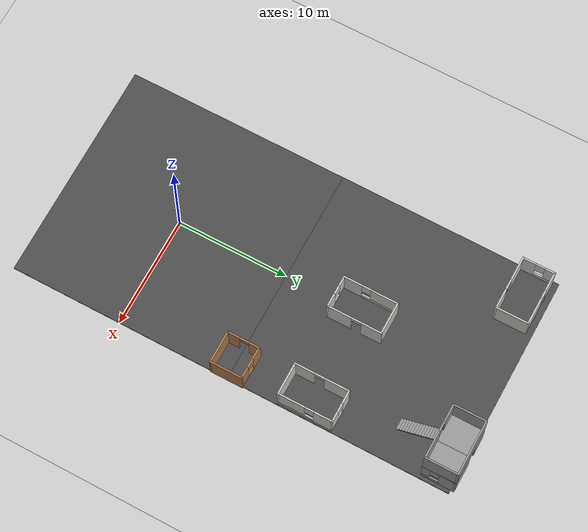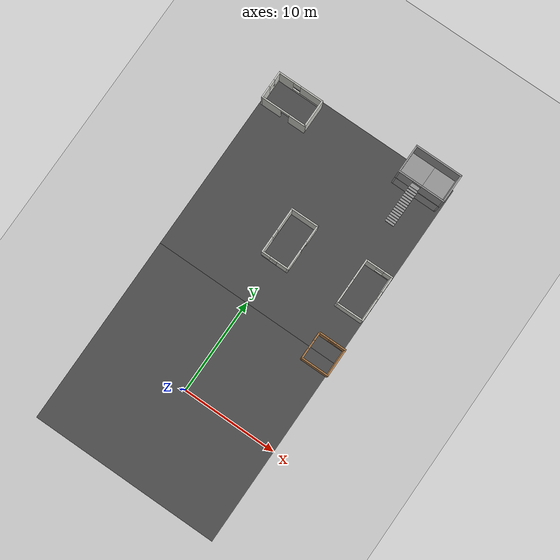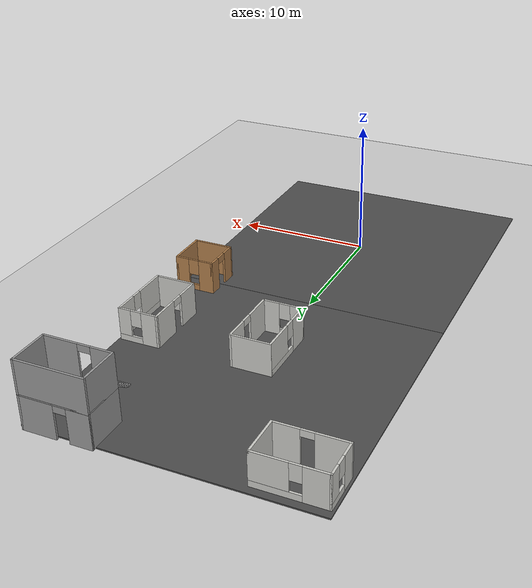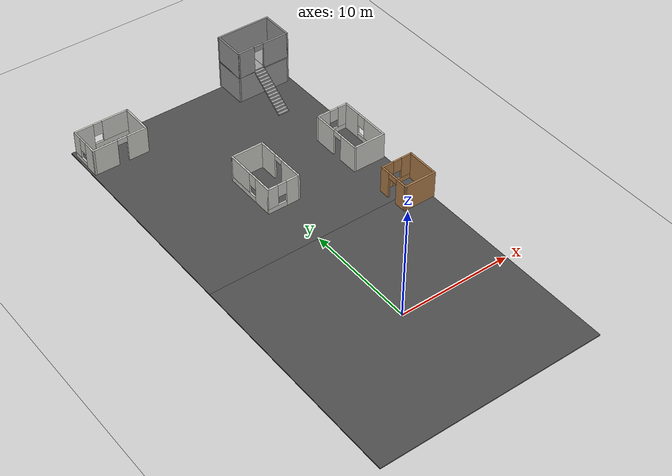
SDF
<sdf version="1.6">
 <world name="default">
  <model name="ground_plane">
   <static>1</static>
   <link name="link">
    <collision name="collision">
     <geometry><plane><normal>0 0 1</normal><size>100 100</size></plane></geometry>
     <surface><friction><ode><mu>100</mu><mu2>50</mu2></ode></friction></surface>
    </collision>
    <visual name="visual">
     <cast_shadows>0</cast_shadows>
     <geometry><plane><normal>0 0 1</normal><size>100 100</size></plane></geometry>
     <material>
      <script><uri>file://media/materials/scripts/gazebo.material</uri><name>Gazebo/Grey</name></script>
     </material>
    </visual>
   </link>
  </model>
  <model name="asphalt_plane">
   <static>1</static>
   <link name="link">
    <collision name="collision"><geometry><box><size>20 20 0.1</size></box></geometry></collision>
    <visual name="visual">
     <cast_shadows>0</cast_shadows>
     <geometry><box><size>20 20 0.1</size></box></geometry>
     <material>
      <script>
       <uri>model://asphalt_plane/materials/scripts</uri>
       <uri>model://asphalt_plane/materials/textures</uri>
       <name>vrc/asphalt</name>
      </script>
     </material>
    </visual>
   </link>
  </model>
  <model name="asphalt_plane_0">
   <static>1</static>
   <link name="link">
    <collision name="collision"><geometry><box><size>20 20 0.1</size></box></geometry></collision>
    <visual name="visual">
     <cast_shadows>0</cast_shadows>
     <geometry><box><size>20 20 0.1</size></box></geometry>
     <material>
      <script>
       <uri>model://asphalt_plane/materials/scripts</uri>
       <uri>model://asphalt_plane/materials/textures</uri>
       <name>vrc/asphalt</name>
      </script>
     </material>
    </visual>
   </link>
   <pose>0 20 0 0 -0 0</pose>
  </model>
  <model name="house2">
   <pose>-7.33447 27.9705 0 0 -0 0</pose>
   <link name="Wall_10">
    <pose>-2.425 -0 0 0 -0 1.5708</pose>
    <visual name="Wall_10_Visual_0">
     <pose>-0.8725 0 1.25 0 -0 0</pose>
     <geometry><box><size>1.255 0.15 2.5</size></box></geometry>
     <material>
      <script><uri>file://media/materials/scripts/gazebo.material</uri><name>Gazebo/CeilingTiled</name></script>
      <ambient>1 1 1 1</ambient>
     </material>
     <meta><layer>0</layer></meta>
    </visual>
    <collision name="Wall_10_Collision_0">
     <geometry><box><size>1.255 0.15 2.5</size></box></geometry>
     <pose>-0.8725 0 1.25 0 -0 0</pose>
    </collision>
    <visual name="Wall_10_Visual_1">
     <pose>0.6275 0 0.25 0 -0 0</pose>
     <geometry><box><size>1.745 0.15 0.5</size></box></geometry>
     <material>
      <script><uri>file://media/materials/scripts/gazebo.material</uri><name>Gazebo/CeilingTiled</name></script>
      <ambient>1 1 1 1</ambient>
     </material>
     <meta><layer>0</layer></meta>
    </visual>
    <collision name="Wall_10_Collision_1">
     <geometry><box><size>1.745 0.15 0.5</size></box></geometry>
     <pose>0.6275 0 0.25 0 -0 0</pose>
    </collision>
    <visual name="Wall_10_Visual_2">
     <pose>1.0275 0 1.5 0 -0 0</pose>
     <geometry><box><size>0.945 0.15 2</size></box></geometry>
     <material>
      <script><uri>file://media/materials/scripts/gazebo.material</uri><name>Gazebo/CeilingTiled</name></script>
      <ambient>1 1 1 1</ambient>
     </material>
     <meta><layer>0</layer></meta>
    </visual>
    <collision name="Wall_10_Collision_2">
     <geometry><box><size>0.945 0.15 2</size></box></geometry>
     <pose>1.0275 0 1.5 0 -0 0</pose>
    </collision>
    <visual name="Wall_10_Visual_3">
     <pose>0.155 0 1.9 0 -0 0</pose>
     <geometry><box><size>0.8 0.15 1.2</size></box></geometry>
     <material>
      <script><uri>file://media/materials/scripts/gazebo.material</uri><name>Gazebo/CeilingTiled</name></script>
      <ambient>1 1 1 1</ambient>
     </material>
     <meta><layer>0</layer></meta>
    </visual>
    <collision name="Wall_10_Collision_3">
     <geometry><box><size>0.8 0.15 1.2</size></box></geometry>
     <pose>0.155 0 1.9 0 -0 0</pose>
    </collision>
   </link>
   <link name="Wall_7">
    <pose>0 1.425 0 0 -0 0</pose>
    <visual name="Wall_7_Visual_0">
     <pose>-1.6375 0 1.25 0 -0 0</pose>
     <geometry><box><size>1.725 0.15 2.5</size></box></geometry>
     <material>
      <script><uri>file://media/materials/scripts/gazebo.material</uri><name>Gazebo/CeilingTiled</name></script>
      <ambient>1 1 1 1</ambient>
     </material>
     <meta><layer>0</layer></meta>
    </visual>
    <collision name="Wall_7_Collision_0">
     <geometry><box><size>1.725 0.15 2.5</size></box></geometry>
     <pose>-1.6375 0 1.25 0 -0 0</pose>
    </collision>
    <visual name="Wall_7_Visual_1">
     <pose>0.8625 0 0.25 0 -0 0</pose>
     <geometry><box><size>3.275 0.15 0.5</size></box></geometry>
     <material>
      <script><uri>file://media/materials/scripts/gazebo.material</uri><name>Gazebo/CeilingTiled</name></script>
      <ambient>1 1 1 1</ambient>
     </material>
     <meta><layer>0</layer></meta>
    </visual>
    <collision name="Wall_7_Collision_1">
     <geometry><box><size>3.275 0.15 0.5</size></box></geometry>
     <pose>0.8625 0 0.25 0 -0 0</pose>
    </collision>
    <visual name="Wall_7_Visual_2">
     <pose>1.2625 0 1.5 0 -0 0</pose>
     <geometry><box><size>2.475 0.15 2</size></box></geometry>
     <material>
      <script><uri>file://media/materials/scripts/gazebo.material</uri><name>Gazebo/CeilingTiled</name></script>
      <ambient>1 1 1 1</ambient>
     </material>
     <meta><layer>0</layer></meta>
    </visual>
    <collision name="Wall_7_Collision_2">
     <geometry><box><size>2.475 0.15 2</size></box></geometry>
     <pose>1.2625 0 1.5 0 -0 0</pose>
    </collision>
    <visual name="Wall_7_Visual_3">
     <pose>-0.375 0 1.9 0 -0 0</pose>
     <geometry><box><size>0.8 0.15 1.2</size></box></geometry>
     <material>
      <script><uri>file://media/materials/scripts/gazebo.material</uri><name>Gazebo/CeilingTiled</name></script>
      <ambient>1 1 1 1</ambient>
     </material>
     <meta><layer>0</layer></meta>
    </visual>
    <collision name="Wall_7_Collision_3">
     <geometry><box><size>0.8 0.15 1.2</size></box></geometry>
     <pose>-0.375 0 1.9 0 -0 0</pose>
    </collision>
   </link>
   <link name="Wall_8">
    <collision name="Wall_8_Collision">
     <geometry><box><size>3 0.15 2.5</size></box></geometry>
     <pose>0 0 1.25 0 -0 0</pose>
    </collision>
    <visual name="Wall_8_Visual">
     <pose>0 0 1.25 0 -0 0</pose>
     <geometry><box><size>3 0.15 2.5</size></box></geometry>
     <material>
      <script><uri>file://media/materials/scripts/gazebo.material</uri><name>Gazebo/CeilingTiled</name></script>
      <ambient>1 1 1 1</ambient>
     </material>
     <meta><layer>0</layer></meta>
    </visual>
    <pose>2.425 -0 0 0 -0 -1.5708</pose>
   </link>
   <link name="Wall_9">
    <pose>0 -1.425 0 0 -0 3.14159</pose>
    <visual name="Wall_9_Visual_0">
     <pose>-1.5725 0 1.25 0 -0 0</pose>
     <geometry><box><size>1.855 0.15 2.5</size></box></geometry>
     <material>
      <script><uri>file://media/materials/scripts/gazebo.material</uri><name>Gazebo/CeilingTiled</name></script>
      <ambient>1 1 1 1</ambient>
     </material>
     <meta><layer>0</layer></meta>
    </visual>
    <collision name="Wall_9_Collision_0">
     <geometry><box><size>1.855 0.15 2.5</size></box></geometry>
     <pose>-1.5725 0 1.25 0 -0 0</pose>
    </collision>
    <visual name="Wall_9_Visual_1">
     <pose>1.3775 0 1.25 0 -0 0</pose>
     <geometry><box><size>2.245 0.15 2.5</size></box></geometry>
     <material>
      <script><uri>file://media/materials/scripts/gazebo.material</uri><name>Gazebo/CeilingTiled</name></script>
      <ambient>1 1 1 1</ambient>
     </material>
     <meta><layer>0</layer></meta>
    </visual>
    <collision name="Wall_9_Collision_1">
     <geometry><box><size>2.245 0.15 2.5</size></box></geometry>
     <pose>1.3775 0 1.25 0 -0 0</pose>
    </collision>
    <visual name="Wall_9_Visual_2">
     <pose>-0.195 0 2.25 0 -0 0</pose>
     <geometry><box><size>0.9 0.15 0.5</size></box></geometry>
     <material>
      <script><uri>file://media/materials/scripts/gazebo.material</uri><name>Gazebo/CeilingTiled</name></script>
      <ambient>1 1 1 1</ambient>
     </material>
     <meta><layer>0</layer></meta>
    </visual>
    <collision name="Wall_9_Collision_2">
     <geometry><box><size>0.9 0.15 0.5</size></box></geometry>
     <pose>-0.195 0 2.25 0 -0 0</pose>
    </collision>
   </link>
   <static>1</static>
  </model>
  <model name="house1_1_clone">
   <pose>8.59732 10 0 0 -0 0</pose>
   <link name="Wall_2">
    <pose>0 1.425 0 0 -0 0</pose>
    <visual name="Wall_2_Visual_0">
     <pose>-0.9275 0 1.25 0 -0 0</pose>
     <geometry><box><size>1.145 0.15 2.5</size></box></geometry>
     <material>
      <script><uri>file://media/materials/scripts/gazebo.material</uri><name>Gazebo/Wood</name></script>
      <ambient>1 1 1 1</ambient>
     </material>
     <meta><layer>0</layer></meta>
    </visual>
    <collision name="Wall_2_Collision_0">
     <geometry><box><size>1.145 0.15 2.5</size></box></geometry>
     <pose>-0.9275 0 1.25 0 -0 0</pose>
    </collision>
    <visual name="Wall_2_Visual_1">
     <pose>0.5725 0 0.25 0 -0 0</pose>
     <geometry><box><size>1.855 0.15 0.5</size></box></geometry>
     <material>
      <script><uri>file://media/materials/scripts/gazebo.material</uri><name>Gazebo/Wood</name></script>
      <ambient>1 1 1 1</ambient>
     </material>
     <meta><layer>0</layer></meta>
    </visual>
    <collision name="Wall_2_Collision_1">
     <geometry><box><size>1.855 0.15 0.5</size></box></geometry>
     <pose>0.5725 0 0.25 0 -0 0</pose>
    </collision>
    <visual name="Wall_2_Visual_2">
     <pose>0.9725 0 1.5 0 -0 0</pose>
     <geometry><box><size>1.055 0.15 2</size></box></geometry>
     <material>
      <script><uri>file://media/materials/scripts/gazebo.material</uri><name>Gazebo/Wood</name></script>
      <ambient>1 1 1 1</ambient>
     </material>
     <meta><layer>0</layer></meta>
    </visual>
    <collision name="Wall_2_Collision_2">
     <geometry><box><size>1.055 0.15 2</size></box></geometry>
     <pose>0.9725 0 1.5 0 -0 0</pose>
    </collision>
    <visual name="Wall_2_Visual_3">
     <pose>0.045 0 1.9 0 -0 0</pose>
     <geometry><box><size>0.8 0.15 1.2</size></box></geometry>
     <material>
      <script><uri>file://media/materials/scripts/gazebo.material</uri><name>Gazebo/Wood</name></script>
      <ambient>1 1 1 1</ambient>
     </material>
     <meta><layer>0</layer></meta>
    </visual>
    <collision name="Wall_2_Collision_3">
     <geometry><box><size>0.8 0.15 1.2</size></box></geometry>
     <pose>0.045 0 1.9 0 -0 0</pose>
    </collision>
   </link>
   <link name="Wall_3">
    <collision name="Wall_3_Collision">
     <geometry><box><size>3 0.15 2.5</size></box></geometry>
     <pose>0 0 1.25 0 -0 0</pose>
    </collision>
    <visual name="Wall_3_Visual">
     <pose>0 0 1.25 0 -0 0</pose>
     <geometry><box><size>3 0.15 2.5</size></box></geometry>
     <material>
      <script><uri>file://media/materials/scripts/gazebo.material</uri><name>Gazebo/Wood</name></script>
      <ambient>1 1 1 1</ambient>
     </material>
     <meta><layer>0</layer></meta>
    </visual>
    <pose>1.425 0 0 0 -0 -1.5708</pose>
   </link>
   <link name="Wall_4">
    <collision name="Wall_4_Collision">
     <geometry><box><size>3 0.15 2.5</size></box></geometry>
     <pose>0 0 1.25 0 -0 0</pose>
    </collision>
    <visual name="Wall_4_Visual">
     <pose>0 0 1.25 0 -0 0</pose>
     <geometry><box><size>3 0.15 2.5</size></box></geometry>
     <material>
      <script><uri>file://media/materials/scripts/gazebo.material</uri><name>Gazebo/Wood</name></script>
      <ambient>1 1 1 1</ambient>
     </material>
     <meta><layer>0</layer></meta>
    </visual>
    <pose>0 -1.425 0 0 -0 3.14159</pose>
   </link>
   <link name="Wall_5">
    <pose>-1.425 0 0 0 -0 1.5708</pose>
    <visual name="Wall_5_Visual_0">
     <pose>-0.9325 0 1.25 0 -0 0</pose>
     <geometry><box><size>1.135 0.15 2.5</size></box></geometry>
     <material>
      <script><uri>file://media/materials/scripts/gazebo.material</uri><name>Gazebo/Wood</name></script>
      <ambient>1 1 1 1</ambient>
     </material>
     <meta><layer>0</layer></meta>
    </visual>
    <collision name="Wall_5_Collision_0">
     <geometry><box><size>1.135 0.15 2.5</size></box></geometry>
     <pose>-0.9325 0 1.25 0 -0 0</pose>
    </collision>
    <visual name="Wall_5_Visual_1">
     <pose>1.0175 0 1.25 0 -0 0</pose>
     <geometry><box><size>0.965 0.15 2.5</size></box></geometry>
     <material>
      <script><uri>file://media/materials/scripts/gazebo.material</uri><name>Gazebo/Wood</name></script>
      <ambient>1 1 1 1</ambient>
     </material>
     <meta><layer>0</layer></meta>
    </visual>
    <collision name="Wall_5_Collision_1">
     <geometry><box><size>0.965 0.15 2.5</size></box></geometry>
     <pose>1.0175 0 1.25 0 -0 0</pose>
    </collision>
    <visual name="Wall_5_Visual_2">
     <pose>0.085 0 2.25 0 -0 0</pose>
     <geometry><box><size>0.9 0.15 0.5</size></box></geometry>
     <material>
      <script><uri>file://media/materials/scripts/gazebo.material</uri><name>Gazebo/Wood</name></script>
      <ambient>1 1 1 1</ambient>
     </material>
     <meta><layer>0</layer></meta>
    </visual>
    <collision name="Wall_5_Collision_2">
     <geometry><box><size>0.9 0.15 0.5</size></box></geometry>
     <pose>0.085 0 2.25 0 -0 0</pose>
    </collision>
   </link>
   <static>1</static>
  </model>
  <model name="house2_clone">
   <pose>8.36 17 0 0 0 -1.57</pose>
   <link name="Wall_10">
    <pose>-2.425 -0 0 0 -0 1.5708</pose>
    <visual name="Wall_10_Visual_0">
     <pose>-0.8725 0 1.25 0 -0 0</pose>
     <geometry><box><size>1.255 0.15 2.5</size></box></geometry>
     <material>
      <script><uri>file://media/materials/scripts/gazebo.material</uri><name>Gazebo/CeilingTiled</name></script>
      <ambient>1 1 1 1</ambient>
     </material>
     <meta><layer>0</layer></meta>
    </visual>
    <collision name="Wall_10_Collision_0">
     <geometry><box><size>1.255 0.15 2.5</size></box></geometry>
     <pose>-0.8725 0 1.25 0 -0 0</pose>
    </collision>
    <visual name="Wall_10_Visual_1">
     <pose>0.6275 0 0.25 0 -0 0</pose>
     <geometry><box><size>1.745 0.15 0.5</size></box></geometry>
     <material>
      <script><uri>file://media/materials/scripts/gazebo.material</uri><name>Gazebo/CeilingTiled</name></script>
      <ambient>1 1 1 1</ambient>
     </material>
     <meta><layer>0</layer></meta>
    </visual>
    <collision name="Wall_10_Collision_1">
     <geometry><box><size>1.745 0.15 0.5</size></box></geometry>
     <pose>0.6275 0 0.25 0 -0 0</pose>
    </collision>
    <visual name="Wall_10_Visual_2">
     <pose>1.0275 0 1.5 0 -0 0</pose>
     <geometry><box><size>0.945 0.15 2</size></box></geometry>
     <material>
      <script><uri>file://media/materials/scripts/gazebo.material</uri><name>Gazebo/CeilingTiled</name></script>
      <ambient>1 1 1 1</ambient>
     </material>
     <meta><layer>0</layer></meta>
    </visual>
    <collision name="Wall_10_Collision_2">
     <geometry><box><size>0.945 0.15 2</size></box></geometry>
     <pose>1.0275 0 1.5 0 -0 0</pose>
    </collision>
    <visual name="Wall_10_Visual_3">
     <pose>0.155 0 1.9 0 -0 0</pose>
     <geometry><box><size>0.8 0.15 1.2</size></box></geometry>
     <material>
      <script><uri>file://media/materials/scripts/gazebo.material</uri><name>Gazebo/CeilingTiled</name></script>
      <ambient>1 1 1 1</ambient>
     </material>
     <meta><layer>0</layer></meta>
    </visual>
    <collision name="Wall_10_Collision_3">
     <geometry><box><size>0.8 0.15 1.2</size></box></geometry>
     <pose>0.155 0 1.9 0 -0 0</pose>
    </collision>
   </link>
   <link name="Wall_7">
    <pose>0 1.425 0 0 -0 0</pose>
    <visual name="Wall_7_Visual_0">
     <pose>-1.6375 0 1.25 0 -0 0</pose>
     <geometry><box><size>1.725 0.15 2.5</size></box></geometry>
     <material>
      <script><uri>file://media/materials/scripts/gazebo.material</uri><name>Gazebo/CeilingTiled</name></script>
      <ambient>1 1 1 1</ambient>
     </material>
     <meta><layer>0</layer></meta>
    </visual>
    <collision name="Wall_7_Collision_0">
     <geometry><box><size>1.725 0.15 2.5</size></box></geometry>
     <pose>-1.6375 0 1.25 0 -0 0</pose>
    </collision>
    <visual name="Wall_7_Visual_1">
     <pose>0.8625 0 0.25 0 -0 0</pose>
     <geometry><box><size>3.275 0.15 0.5</size></box></geometry>
     <material>
      <script><uri>file://media/materials/scripts/gazebo.material</uri><name>Gazebo/CeilingTiled</name></script>
      <ambient>1 1 1 1</ambient>
     </material>
     <meta><layer>0</layer></meta>
    </visual>
    <collision name="Wall_7_Collision_1">
     <geometry><box><size>3.275 0.15 0.5</size></box></geometry>
     <pose>0.8625 0 0.25 0 -0 0</pose>
    </collision>
    <visual name="Wall_7_Visual_2">
     <pose>1.2625 0 1.5 0 -0 0</pose>
     <geometry><box><size>2.475 0.15 2</size></box></geometry>
     <material>
      <script><uri>file://media/materials/scripts/gazebo.material</uri><name>Gazebo/CeilingTiled</name></script>
      <ambient>1 1 1 1</ambient>
     </material>
     <meta><layer>0</layer></meta>
    </visual>
    <collision name="Wall_7_Collision_2">
     <geometry><box><size>2.475 0.15 2</size></box></geometry>
     <pose>1.2625 0 1.5 0 -0 0</pose>
    </collision>
    <visual name="Wall_7_Visual_3">
     <pose>-0.375 0 1.9 0 -0 0</pose>
     <geometry><box><size>0.8 0.15 1.2</size></box></geometry>
     <material>
      <script><uri>file://media/materials/scripts/gazebo.material</uri><name>Gazebo/CeilingTiled</name></script>
      <ambient>1 1 1 1</ambient>
     </material>
     <meta><layer>0</layer></meta>
    </visual>
    <collision name="Wall_7_Collision_3">
     <geometry><box><size>0.8 0.15 1.2</size></box></geometry>
     <pose>-0.375 0 1.9 0 -0 0</pose>
    </collision>
   </link>
   <link name="Wall_8">
    <collision name="Wall_8_Collision">
     <geometry><box><size>3 0.15 2.5</size></box></geometry>
     <pose>0 0 1.25 0 -0 0</pose>
    </collision>
    <visual name="Wall_8_Visual">
     <pose>0 0 1.25 0 -0 0</pose>
     <geometry><box><size>3 0.15 2.5</size></box></geometry>
     <material>
      <script><uri>file://media/materials/scripts/gazebo.material</uri><name>Gazebo/CeilingTiled</name></script>
      <ambient>1 1 1 1</ambient>
     </material>
     <meta><layer>0</layer></meta>
    </visual>
    <pose>2.425 -0 0 0 -0 -1.5708</pose>
   </link>
   <link name="Wall_9">
    <pose>0 -1.425 0 0 -0 3.14159</pose>
    <visual name="Wall_9_Visual_0">
     <pose>-1.5725 0 1.25 0 -0 0</pose>
     <geometry><box><size>1.855 0.15 2.5</size></box></geometry>
     <material>
      <script><uri>file://media/materials/scripts/gazebo.material</uri><name>Gazebo/CeilingTiled</name></script>
      <ambient>1 1 1 1</ambient>
     </material>
     <meta><layer>0</layer></meta>
    </visual>
    <collision name="Wall_9_Collision_0">
     <geometry><box><size>1.855 0.15 2.5</size></box></geometry>
     <pose>-1.5725 0 1.25 0 -0 0</pose>
    </collision>
    <visual name="Wall_9_Visual_1">
     <pose>1.3775 0 1.25 0 -0 0</pose>
     <geometry><box><size>2.245 0.15 2.5</size></box></geometry>
     <material>
      <script><uri>file://media/materials/scripts/gazebo.material</uri><name>Gazebo/CeilingTiled</name></script>
      <ambient>1 1 1 1</ambient>
     </material>
     <meta><layer>0</layer></meta>
    </visual>
    <collision name="Wall_9_Collision_1">
     <geometry><box><size>2.245 0.15 2.5</size></box></geometry>
     <pose>1.3775 0 1.25 0 -0 0</pose>
    </collision>
    <visual name="Wall_9_Visual_2">
     <pose>-0.195 0 2.25 0 -0 0</pose>
     <geometry><box><size>0.9 0.15 0.5</size></box></geometry>
     <material>
      <script><uri>file://media/materials/scripts/gazebo.material</uri><name>Gazebo/CeilingTiled</name></script>
      <ambient>1 1 1 1</ambient>
     </material>
     <meta><layer>0</layer></meta>
    </visual>
    <collision name="Wall_9_Collision_2">
     <geometry><box><size>0.9 0.15 0.5</size></box></geometry>
     <pose>-0.195 0 2.25 0 -0 0</pose>
    </collision>
   </link>
   <static>1</static>
  </model>
  <model name="house2_clone_clone">
   <pose>0 17 0 0 -0 1.57</pose>
   <link name="Wall_10">
    <pose>-2.425 -0 0 0 -0 1.5708</pose>
    <visual name="Wall_10_Visual_0">
     <pose>-0.8725 0 1.25 0 -0 0</pose>
     <geometry><box><size>1.255 0.15 2.5</size></box></geometry>
     <material>
      <script><uri>file://media/materials/scripts/gazebo.material</uri><name>Gazebo/CeilingTiled</name></script>
      <ambient>1 1 1 1</ambient>
     </material>
     <meta><layer>0</layer></meta>
    </visual>
    <collision name="Wall_10_Collision_0">
     <geometry><box><size>1.255 0.15 2.5</size></box></geometry>
     <pose>-0.8725 0 1.25 0 -0 0</pose>
    </collision>
    <visual name="Wall_10_Visual_1">
     <pose>0.6275 0 0.25 0 -0 0</pose>
     <geometry><box><size>1.745 0.15 0.5</size></box></geometry>
     <material>
      <script><uri>file://media/materials/scripts/gazebo.material</uri><name>Gazebo/CeilingTiled</name></script>
      <ambient>1 1 1 1</ambient>
     </material>
     <meta><layer>0</layer></meta>
    </visual>
    <collision name="Wall_10_Collision_1">
     <geometry><box><size>1.745 0.15 0.5</size></box></geometry>
     <pose>0.6275 0 0.25 0 -0 0</pose>
    </collision>
    <visual name="Wall_10_Visual_2">
     <pose>1.0275 0 1.5 0 -0 0</pose>
     <geometry><box><size>0.945 0.15 2</size></box></geometry>
     <material>
      <script><uri>file://media/materials/scripts/gazebo.material</uri><name>Gazebo/CeilingTiled</name></script>
      <ambient>1 1 1 1</ambient>
     </material>
     <meta><layer>0</layer></meta>
    </visual>
    <collision name="Wall_10_Collision_2">
     <geometry><box><size>0.945 0.15 2</size></box></geometry>
     <pose>1.0275 0 1.5 0 -0 0</pose>
    </collision>
    <visual name="Wall_10_Visual_3">
     <pose>0.155 0 1.9 0 -0 0</pose>
     <geometry><box><size>0.8 0.15 1.2</size></box></geometry>
     <material>
      <script><uri>file://media/materials/scripts/gazebo.material</uri><name>Gazebo/CeilingTiled</name></script>
      <ambient>1 1 1 1</ambient>
     </material>
     <meta><layer>0</layer></meta>
    </visual>
    <collision name="Wall_10_Collision_3">
     <geometry><box><size>0.8 0.15 1.2</size></box></geometry>
     <pose>0.155 0 1.9 0 -0 0</pose>
    </collision>
   </link>
   <link name="Wall_7">
    <pose>0 1.425 0 0 -0 0</pose>
    <visual name="Wall_7_Visual_0">
     <pose>-1.6375 0 1.25 0 -0 0</pose>
     <geometry><box><size>1.725 0.15 2.5</size></box></geometry>
     <material>
      <script><uri>file://media/materials/scripts/gazebo.material</uri><name>Gazebo/CeilingTiled</name></script>
      <ambient>1 1 1 1</ambient>
     </material>
     <meta><layer>0</layer></meta>
    </visual>
    <collision name="Wall_7_Collision_0">
     <geometry><box><size>1.725 0.15 2.5</size></box></geometry>
     <pose>-1.6375 0 1.25 0 -0 0</pose>
    </collision>
    <visual name="Wall_7_Visual_1">
     <pose>0.8625 0 0.25 0 -0 0</pose>
     <geometry><box><size>3.275 0.15 0.5</size></box></geometry>
     <material>
      <script><uri>file://media/materials/scripts/gazebo.material</uri><name>Gazebo/CeilingTiled</name></script>
      <ambient>1 1 1 1</ambient>
     </material>
     <meta><layer>0</layer></meta>
    </visual>
    <collision name="Wall_7_Collision_1">
     <geometry><box><size>3.275 0.15 0.5</size></box></geometry>
     <pose>0.8625 0 0.25 0 -0 0</pose>
    </collision>
    <visual name="Wall_7_Visual_2">
     <pose>1.2625 0 1.5 0 -0 0</pose>
     <geometry><box><size>2.475 0.15 2</size></box></geometry>
     <material>
      <script><uri>file://media/materials/scripts/gazebo.material</uri><name>Gazebo/CeilingTiled</name></script>
      <ambient>1 1 1 1</ambient>
     </material>
     <meta><layer>0</layer></meta>
    </visual>
    <collision name="Wall_7_Collision_2">
     <geometry><box><size>2.475 0.15 2</size></box></geometry>
     <pose>1.2625 0 1.5 0 -0 0</pose>
    </collision>
    <visual name="Wall_7_Visual_3">
     <pose>-0.375 0 1.9 0 -0 0</pose>
     <geometry><box><size>0.8 0.15 1.2</size></box></geometry>
     <material>
      <script><uri>file://media/materials/scripts/gazebo.material</uri><name>Gazebo/CeilingTiled</name></script>
      <ambient>1 1 1 1</ambient>
     </material>
     <meta><layer>0</layer></meta>
    </visual>
    <collision name="Wall_7_Collision_3">
     <geometry><box><size>0.8 0.15 1.2</size></box></geometry>
     <pose>-0.375 0 1.9 0 -0 0</pose>
    </collision>
   </link>
   <link name="Wall_8">
    <collision name="Wall_8_Collision">
     <geometry><box><size>3 0.15 2.5</size></box></geometry>
     <pose>0 0 1.25 0 -0 0</pose>
    </collision>
    <visual name="Wall_8_Visual">
     <pose>0 0 1.25 0 -0 0</pose>
     <geometry><box><size>3 0.15 2.5</size></box></geometry>
     <material>
      <script><uri>file://media/materials/scripts/gazebo.material</uri><name>Gazebo/CeilingTiled</name></script>
      <ambient>1 1 1 1</ambient>
     </material>
     <meta><layer>0</layer></meta>
    </visual>
    <pose>2.425 -0 0 0 -0 -1.5708</pose>
   </link>
   <link name="Wall_9">
    <pose>0 -1.425 0 0 -0 3.14159</pose>
    <visual name="Wall_9_Visual_0">
     <pose>-1.5725 0 1.25 0 -0 0</pose>
     <geometry><box><size>1.855 0.15 2.5</size></box></geometry>
     <material>
      <script><uri>file://media/materials/scripts/gazebo.material</uri><name>Gazebo/CeilingTiled</name></script>
      <ambient>1 1 1 1</ambient>
     </material>
     <meta><layer>0</layer></meta>
    </visual>
    <collision name="Wall_9_Collision_0">
     <geometry><box><size>1.855 0.15 2.5</size></box></geometry>
     <pose>-1.5725 0 1.25 0 -0 0</pose>
    </collision>
    <visual name="Wall_9_Visual_1">
     <pose>1.3775 0 1.25 0 -0 0</pose>
     <geometry><box><size>2.245 0.15 2.5</size></box></geometry>
     <material>
      <script><uri>file://media/materials/scripts/gazebo.material</uri><name>Gazebo/CeilingTiled</name></script>
      <ambient>1 1 1 1</ambient>
     </material>
     <meta><layer>0</layer></meta>
    </visual>
    <collision name="Wall_9_Collision_1">
     <geometry><box><size>2.245 0.15 2.5</size></box></geometry>
     <pose>1.3775 0 1.25 0 -0 0</pose>
    </collision>
    <visual name="Wall_9_Visual_2">
     <pose>-0.195 0 2.25 0 -0 0</pose>
     <geometry><box><size>0.9 0.15 0.5</size></box></geometry>
     <material>
      <script><uri>file://media/materials/scripts/gazebo.material</uri><name>Gazebo/CeilingTiled</name></script>
      <ambient>1 1 1 1</ambient>
     </material>
     <meta><layer>0</layer></meta>
    </visual>
    <collision name="Wall_9_Collision_2">
     <geometry><box><size>0.9 0.15 0.5</size></box></geometry>
     <pose>-0.195 0 2.25 0 -0 0</pose>
    </collision>
   </link>
   <static>1</static>
  </model>
  <model name="duplex_clone">
   <pose>7.18001 27.1088 0 0 -0 3.14</pose>
   <link name="Floor_5">
    <pose>-0 -1.70219 2.5 0 -0 0</pose>
    <visual name="Floor_5_Visual_0">
     <pose>-1.28918 0 0.05 0 -0 0</pose>
     <geometry><box><size>2.42164 3 0.1</size></box></geometry>
     <material>
      <script><uri>file://media/materials/scripts/gazebo.material</uri><name>Gazebo/Grey</name></script>
      <ambient>1 1 1 1</ambient>
     </material>
     <meta><layer>1</layer></meta>
    </visual>
    <collision name="Floor_5_Collision_0">
     <geometry><box><size>2.42164 3 0.1</size></box></geometry>
     <pose>-1.28918 0 0.05 0 -0 0</pose>
    </collision>
    <visual name="Floor_5_Visual_1">
     <pose>1.21082 -0.047806 0.05 0 -0 0</pose>
     <geometry><box><size>2.57836 2.90439 0.1</size></box></geometry>
     <material>
      <script><uri>file://media/materials/scripts/gazebo.material</uri><name>Gazebo/Grey</name></script>
      <ambient>1 1 1 1</ambient>
     </material>
     <meta><layer>1</layer></meta>
    </visual>
    <collision name="Floor_5_Collision_1">
     <geometry><box><size>2.57836 2.90439 0.1</size></box></geometry>
     <pose>1.21082 -0.047806 0.05 0 -0 0</pose>
    </collision>
    <visual name="Floor_5_Visual_2">
     <pose>1.71082 1.45219 0.05 0 -0 0</pose>
     <geometry><box><size>1.57836 0.095611 0.1</size></box></geometry>
     <material>
      <script><uri>file://media/materials/scripts/gazebo.material</uri><name>Gazebo/Grey</name></script>
      <ambient>1 1 1 1</ambient>
     </material>
     <meta><layer>1</layer></meta>
    </visual>
    <collision name="Floor_5_Collision_2">
     <geometry><box><size>1.57836 0.095611 0.1</size></box></geometry>
     <pose>1.71082 1.45219 0.05 0 -0 0</pose>
    </collision>
   </link>
   <link name="Stairs_2">
    <visual name="Stairs_2_Visual_0">
     <pose>0.421637 3.08553 0.083333 0 -0 0</pose>
     <geometry><box><size>1 0.233333 0.166667</size></box></geometry>
     <material>
      <script><uri>file://media/materials/scripts/gazebo.material</uri><name>Gazebo/Grey</name></script>
      <ambient>1 1 1 1</ambient>
     </material>
     <meta><layer>0</layer></meta>
    </visual>
    <collision name="Stairs_2_Collision_0">
     <geometry><box><size>1 0.233333 0.166667</size></box></geometry>
     <pose>0.421637 3.08553 0.083333 0 -0 0</pose>
    </collision>
    <visual name="Stairs_2_Visual_1">
     <pose>0.421637 2.85219 0.25 0 -0 0</pose>
     <geometry><box><size>1 0.233333 0.166667</size></box></geometry>
     <material>
      <script><uri>file://media/materials/scripts/gazebo.material</uri><name>Gazebo/Grey</name></script>
      <ambient>1 1 1 1</ambient>
     </material>
     <meta><layer>0</layer></meta>
    </visual>
    <collision name="Stairs_2_Collision_1">
     <geometry><box><size>1 0.233333 0.166667</size></box></geometry>
     <pose>0.421637 2.85219 0.25 0 -0 0</pose>
    </collision>
    <visual name="Stairs_2_Visual_2">
     <pose>0.421637 2.61886 0.416667 0 -0 0</pose>
     <geometry><box><size>1 0.233333 0.166667</size></box></geometry>
     <material>
      <script><uri>file://media/materials/scripts/gazebo.material</uri><name>Gazebo/Grey</name></script>
      <ambient>1 1 1 1</ambient>
     </material>
     <meta><layer>0</layer></meta>
    </visual>
    <collision name="Stairs_2_Collision_2">
     <geometry><box><size>1 0.233333 0.166667</size></box></geometry>
     <pose>0.421637 2.61886 0.416667 0 -0 0</pose>
    </collision>
    <visual name="Stairs_2_Visual_3">
     <pose>0.421637 2.38553 0.583333 0 -0 0</pose>
     <geometry><box><size>1 0.233333 0.166667</size></box></geometry>
     <material>
      <script><uri>file://media/materials/scripts/gazebo.material</uri><name>Gazebo/Grey</name></script>
      <ambient>1 1 1 1</ambient>
     </material>
     <meta><layer>0</layer></meta>
    </visual>
    <collision name="Stairs_2_Collision_3">
     <geometry><box><size>1 0.233333 0.166667</size></box></geometry>
     <pose>0.421637 2.38553 0.583333 0 -0 0</pose>
    </collision>
    <visual name="Stairs_2_Visual_4">
     <pose>0.421637 2.15219 0.75 0 -0 0</pose>
     <geometry><box><size>1 0.233333 0.166667</size></box></geometry>
     <material>
      <script><uri>file://media/materials/scripts/gazebo.material</uri><name>Gazebo/Grey</name></script>
      <ambient>1 1 1 1</ambient>
     </material>
     <meta><layer>0</layer></meta>
    </visual>
    <collision name="Stairs_2_Collision_4">
     <geometry><box><size>1 0.233333 0.166667</size></box></geometry>
     <pose>0.421637 2.15219 0.75 0 -0 0</pose>
    </collision>
    <visual name="Stairs_2_Visual_5">
     <pose>0.421637 1.91886 0.916667 0 -0 0</pose>
     <geometry><box><size>1 0.233333 0.166667</size></box></geometry>
     <material>
      <script><uri>file://media/materials/scripts/gazebo.material</uri><name>Gazebo/Grey</name></script>
      <ambient>1 1 1 1</ambient>
     </material>
     <meta><layer>0</layer></meta>
    </visual>
    <collision name="Stairs_2_Collision_5">
     <geometry><box><size>1 0.233333 0.166667</size></box></geometry>
     <pose>0.421637 1.91886 0.916667 0 -0 0</pose>
    </collision>
    <visual name="Stairs_2_Visual_6">
     <pose>0.421637 1.68553 1.08333 0 -0 0</pose>
     <geometry><box><size>1 0.233333 0.166667</size></box></geometry>
     <material>
      <script><uri>file://media/materials/scripts/gazebo.material</uri><name>Gazebo/Grey</name></script>
      <ambient>1 1 1 1</ambient>
     </material>
     <meta><layer>0</layer></meta>
    </visual>
    <collision name="Stairs_2_Collision_6">
     <geometry><box><size>1 0.233333 0.166667</size></box></geometry>
     <pose>0.421637 1.68553 1.08333 0 -0 0</pose>
    </collision>
    <visual name="Stairs_2_Visual_7">
     <pose>0.421637 1.45219 1.25 0 -0 0</pose>
     <geometry><box><size>1 0.233333 0.166667</size></box></geometry>
     <material>
      <script><uri>file://media/materials/scripts/gazebo.material</uri><name>Gazebo/Grey</name></script>
      <ambient>1 1 1 1</ambient>
     </material>
     <meta><layer>0</layer></meta>
    </visual>
    <collision name="Stairs_2_Collision_7">
     <geometry><box><size>1 0.233333 0.166667</size></box></geometry>
     <pose>0.421637 1.45219 1.25 0 -0 0</pose>
    </collision>
    <visual name="Stairs_2_Visual_8">
     <pose>0.421637 1.21886 1.41667 0 -0 0</pose>
     <geometry><box><size>1 0.233333 0.166667</size></box></geometry>
     <material>
      <script><uri>file://media/materials/scripts/gazebo.material</uri><name>Gazebo/Grey</name></script>
      <ambient>1 1 1 1</ambient>
     </material>
     <meta><layer>0</layer></meta>
    </visual>
    <collision name="Stairs_2_Collision_8">
     <geometry><box><size>1 0.233333 0.166667</size></box></geometry>
     <pose>0.421637 1.21886 1.41667 0 -0 0</pose>
    </collision>
    <visual name="Stairs_2_Visual_9">
     <pose>0.421637 0.985528 1.58333 0 -0 0</pose>
     <geometry><box><size>1 0.233333 0.166667</size></box></geometry>
     <material>
      <script><uri>file://media/materials/scripts/gazebo.material</uri><name>Gazebo/Grey</name></script>
      <ambient>1 1 1 1</ambient>
     </material>
     <meta><layer>0</layer></meta>
    </visual>
    <collision name="Stairs_2_Collision_9">
     <geometry><box><size>1 0.233333 0.166667</size></box></geometry>
     <pose>0.421637 0.985528 1.58333 0 -0 0</pose>
    </collision>
    <visual name="Stairs_2_Visual_10">
     <pose>0.421637 0.752194 1.75 0 -0 0</pose>
     <geometry><box><size>1 0.233333 0.166667</size></box></geometry>
     <material>
      <script><uri>file://media/materials/scripts/gazebo.material</uri><name>Gazebo/Grey</name></script>
      <ambient>1 1 1 1</ambient>
     </material>
     <meta><layer>0</layer></meta>
    </visual>
    <collision name="Stairs_2_Collision_10">
     <geometry><box><size>1 0.233333 0.166667</size></box></geometry>
     <pose>0.421637 0.752194 1.75 0 -0 0</pose>
    </collision>
    <visual name="Stairs_2_Visual_11">
     <pose>0.421637 0.518861 1.91667 0 -0 0</pose>
     <geometry><box><size>1 0.233333 0.166667</size></box></geometry>
     <material>
      <script><uri>file://media/materials/scripts/gazebo.material</uri><name>Gazebo/Grey</name></script>
      <ambient>1 1 1 1</ambient>
     </material>
     <meta><layer>0</layer></meta>
    </visual>
    <collision name="Stairs_2_Collision_11">
     <geometry><box><size>1 0.233333 0.166667</size></box></geometry>
     <pose>0.421637 0.518861 1.91667 0 -0 0</pose>
    </collision>
    <visual name="Stairs_2_Visual_12">
     <pose>0.421637 0.285528 2.08333 0 -0 0</pose>
     <geometry><box><size>1 0.233333 0.166667</size></box></geometry>
     <material>
      <script><uri>file://media/materials/scripts/gazebo.material</uri><name>Gazebo/Grey</name></script>
      <ambient>1 1 1 1</ambient>
     </material>
     <meta><layer>0</layer></meta>
    </visual>
    <collision name="Stairs_2_Collision_12">
     <geometry><box><size>1 0.233333 0.166667</size></box></geometry>
     <pose>0.421637 0.285528 2.08333 0 -0 0</pose>
    </collision>
    <visual name="Stairs_2_Visual_13">
     <pose>0.421637 0.052195 2.25 0 -0 0</pose>
     <geometry><box><size>1 0.233333 0.166667</size></box></geometry>
     <material>
      <script><uri>file://media/materials/scripts/gazebo.material</uri><name>Gazebo/Grey</name></script>
      <ambient>1 1 1 1</ambient>
     </material>
     <meta><layer>0</layer></meta>
    </visual>
    <collision name="Stairs_2_Collision_13">
     <geometry><box><size>1 0.233333 0.166667</size></box></geometry>
     <pose>0.421637 0.052195 2.25 0 -0 0</pose>
    </collision>
    <visual name="Stairs_2_Visual_14">
     <pose>0.421637 -0.181139 2.41667 0 -0 0</pose>
     <geometry><box><size>1 0.233333 0.166667</size></box></geometry>
     <material>
      <script><uri>file://media/materials/scripts/gazebo.material</uri><name>Gazebo/Grey</name></script>
      <ambient>1 1 1 1</ambient>
     </material>
     <meta><layer>0</layer></meta>
    </visual>
    <collision name="Stairs_2_Collision_14">
     <geometry><box><size>1 0.233333 0.166667</size></box></geometry>
     <pose>0.421637 -0.181139 2.41667 0 -0 0</pose>
    </collision>
   </link>
   <link name="Wall_33">
    <collision name="Wall_33_Collision">
     <geometry><box><size>5 0.15 2.5</size></box></geometry>
     <pose>0 0 1.25 0 -0 0</pose>
    </collision>
    <visual name="Wall_33_Visual">
     <pose>0 0 1.25 0 -0 0</pose>
     <geometry><box><size>5 0.15 2.5</size></box></geometry>
     <material>
      <script><uri>file://media/materials/scripts/gazebo.material</uri><name>Gazebo/Grey</name></script>
      <ambient>1 1 1 1</ambient>
     </material>
     <meta><layer>0</layer></meta>
    </visual>
    <pose>-0 -0.277195 0 0 -0 0</pose>
   </link>
   <link name="Wall_34">
    <collision name="Wall_34_Collision">
     <geometry><box><size>3 0.15 2.5</size></box></geometry>
     <pose>0 0 1.25 0 -0 0</pose>
    </collision>
    <visual name="Wall_34_Visual">
     <pose>0 0 1.25 0 -0 0</pose>
     <geometry><box><size>3 0.15 2.5</size></box></geometry>
     <material>
      <script><uri>file://media/materials/scripts/gazebo.material</uri><name>Gazebo/Grey</name></script>
      <ambient>1 1 1 1</ambient>
     </material>
     <meta><layer>0</layer></meta>
    </visual>
    <pose>2.425 -1.70219 0 0 -0 -1.5708</pose>
   </link>
   <link name="Wall_35">
    <pose>-0 -3.12719 0 0 -0 3.14159</pose>
    <visual name="Wall_35_Visual_0">
     <pose>-1.69725 0 1.25 0 -0 0</pose>
     <geometry><box><size>1.60549 0.15 2.5</size></box></geometry>
     <material>
      <script><uri>file://media/materials/scripts/gazebo.material</uri><name>Gazebo/Grey</name></script>
      <ambient>1 1 1 1</ambient>
     </material>
     <meta><layer>0</layer></meta>
    </visual>
    <collision name="Wall_35_Collision_0">
     <geometry><box><size>1.60549 0.15 2.5</size></box></geometry>
     <pose>-1.69725 0 1.25 0 -0 0</pose>
    </collision>
    <visual name="Wall_35_Visual_1">
     <pose>1.25275 0 1.25 0 -0 0</pose>
     <geometry><box><size>2.49451 0.15 2.5</size></box></geometry>
     <material>
      <script><uri>file://media/materials/scripts/gazebo.material</uri><name>Gazebo/Grey</name></script>
      <ambient>1 1 1 1</ambient>
     </material>
     <meta><layer>0</layer></meta>
    </visual>
    <collision name="Wall_35_Collision_1">
     <geometry><box><size>2.49451 0.15 2.5</size></box></geometry>
     <pose>1.25275 0 1.25 0 -0 0</pose>
    </collision>
    <visual name="Wall_35_Visual_2">
     <pose>-0.444507 0 2.25 0 -0 0</pose>
     <geometry><box><size>0.9 0.15 0.5</size></box></geometry>
     <material>
      <script><uri>file://media/materials/scripts/gazebo.material</uri><name>Gazebo/Grey</name></script>
      <ambient>1 1 1 1</ambient>
     </material>
     <meta><layer>0</layer></meta>
    </visual>
    <collision name="Wall_35_Collision_2">
     <geometry><box><size>0.9 0.15 0.5</size></box></geometry>
     <pose>-0.444507 0 2.25 0 -0 0</pose>
    </collision>
   </link>
   <link name="Wall_36">
    <pose>-2.425 -1.70219 0 0 -0 1.5708</pose>
    <visual name="Wall_36_Visual_0">
     <pose>-0.767883 0 1.25 0 -0 0</pose>
     <geometry><box><size>1.46423 0.15 2.5</size></box></geometry>
     <material>
      <script><uri>file://media/materials/scripts/gazebo.material</uri><name>Gazebo/Grey</name></script>
      <ambient>1 1 1 1</ambient>
     </material>
     <meta><layer>0</layer></meta>
    </visual>
    <collision name="Wall_36_Collision_0">
     <geometry><box><size>1.46423 0.15 2.5</size></box></geometry>
     <pose>-0.767883 0 1.25 0 -0 0</pose>
    </collision>
    <visual name="Wall_36_Visual_1">
     <pose>0.732117 0 0.25 0 -0 0</pose>
     <geometry><box><size>1.53577 0.15 0.5</size></box></geometry>
     <material>
      <script><uri>file://media/materials/scripts/gazebo.material</uri><name>Gazebo/Grey</name></script>
      <ambient>1 1 1 1</ambient>
     </material>
     <meta><layer>0</layer></meta>
    </visual>
    <collision name="Wall_36_Collision_1">
     <geometry><box><size>1.53577 0.15 0.5</size></box></geometry>
     <pose>0.732117 0 0.25 0 -0 0</pose>
    </collision>
    <visual name="Wall_36_Visual_2">
     <pose>1.13212 0 1.5 0 -0 0</pose>
     <geometry><box><size>0.735767 0.15 2</size></box></geometry>
     <material>
      <script><uri>file://media/materials/scripts/gazebo.material</uri><name>Gazebo/Grey</name></script>
      <ambient>1 1 1 1</ambient>
     </material>
     <meta><layer>0</layer></meta>
    </visual>
    <collision name="Wall_36_Collision_2">
     <geometry><box><size>0.735767 0.15 2</size></box></geometry>
     <pose>1.13212 0 1.5 0 -0 0</pose>
    </collision>
    <visual name="Wall_36_Visual_3">
     <pose>0.364233 0 1.9 0 -0 0</pose>
     <geometry><box><size>0.8 0.15 1.2</size></box></geometry>
     <material>
      <script><uri>file://media/materials/scripts/gazebo.material</uri><name>Gazebo/Grey</name></script>
      <ambient>1 1 1 1</ambient>
     </material>
     <meta><layer>0</layer></meta>
    </visual>
    <collision name="Wall_36_Collision_3">
     <geometry><box><size>0.8 0.15 1.2</size></box></geometry>
     <pose>0.364233 0 1.9 0 -0 0</pose>
    </collision>
   </link>
   <link name="Wall_47">
    <pose>-0 -0.277194 2.5 0 -0 0</pose>
    <visual name="Wall_47_Visual_0">
     <pose>-1.25275 0 1.25 0 -0 0</pose>
     <geometry><box><size>2.49451 0.15 2.5</size></box></geometry>
     <material>
      <script><uri>file://media/materials/scripts/gazebo.material</uri><name>Gazebo/Grey</name></script>
      <ambient>1 1 1 1</ambient>
     </material>
     <meta><layer>1</layer></meta>
    </visual>
    <collision name="Wall_47_Collision_0">
     <geometry><box><size>2.49451 0.15 2.5</size></box></geometry>
     <pose>-1.25275 0 1.25 0 -0 0</pose>
    </collision>
    <visual name="Wall_47_Visual_1">
     <pose>1.69725 0 1.25 0 -0 0</pose>
     <geometry><box><size>1.60549 0.15 2.5</size></box></geometry>
     <material>
      <script><uri>file://media/materials/scripts/gazebo.material</uri><name>Gazebo/Grey</name></script>
      <ambient>1 1 1 1</ambient>
     </material>
     <meta><layer>1</layer></meta>
    </visual>
    <collision name="Wall_47_Collision_1">
     <geometry><box><size>1.60549 0.15 2.5</size></box></geometry>
     <pose>1.69725 0 1.25 0 -0 0</pose>
    </collision>
    <visual name="Wall_47_Visual_2">
     <pose>0.444507 0 2.25 0 -0 0</pose>
     <geometry><box><size>0.9 0.15 0.5</size></box></geometry>
     <material>
      <script><uri>file://media/materials/scripts/gazebo.material</uri><name>Gazebo/Grey</name></script>
      <ambient>1 1 1 1</ambient>
     </material>
     <meta><layer>1</layer></meta>
    </visual>
    <collision name="Wall_47_Collision_2">
     <geometry><box><size>0.9 0.15 0.5</size></box></geometry>
     <pose>0.444507 0 2.25 0 -0 0</pose>
    </collision>
   </link>
   <link name="Wall_48">
    <collision name="Wall_48_Collision">
     <geometry><box><size>3 0.15 2.5</size></box></geometry>
     <pose>0 0 1.25 0 -0 0</pose>
    </collision>
    <visual name="Wall_48_Visual">
     <pose>0 0 1.25 0 -0 0</pose>
     <geometry><box><size>3 0.15 2.5</size></box></geometry>
     <material>
      <script><uri>file://media/materials/scripts/gazebo.material</uri><name>Gazebo/Grey</name></script>
      <ambient>1 1 1 1</ambient>
     </material>
     <meta><layer>1</layer></meta>
    </visual>
    <pose>2.425 -1.70219 2.5 0 -0 -1.5708</pose>
   </link>
   <link name="Wall_49">
    <collision name="Wall_49_Collision">
     <geometry><box><size>5 0.15 2.5</size></box></geometry>
     <pose>0 0 1.25 0 -0 0</pose>
    </collision>
    <visual name="Wall_49_Visual">
     <pose>0 0 1.25 0 -0 0</pose>
     <geometry><box><size>5 0.15 2.5</size></box></geometry>
     <material>
      <script><uri>file://media/materials/scripts/gazebo.material</uri><name>Gazebo/Grey</name></script>
      <ambient>1 1 1 1</ambient>
     </material>
     <meta><layer>1</layer></meta>
    </visual>
    <pose>-0 -3.12719 2.5 0 -0 3.14159</pose>
   </link>
   <link name="Wall_50">
    <collision name="Wall_50_Collision">
     <geometry><box><size>3 0.15 2.5</size></box></geometry>
     <pose>0 0 1.25 0 -0 0</pose>
    </collision>
    <visual name="Wall_50_Visual">
     <pose>0 0 1.25 0 -0 0</pose>
     <geometry><box><size>3 0.15 2.5</size></box></geometry>
     <material>
      <script><uri>file://media/materials/scripts/gazebo.material</uri><name>Gazebo/Grey</name></script>
      <ambient>1 1 1 1</ambient>
     </material>
     <meta><layer>1</layer></meta>
    </visual>
    <pose>-2.425 -1.70219 2.5 0 -0 1.5708</pose>
   </link>
   <static>1</static>
  </model>
 </world>
</sdf>
